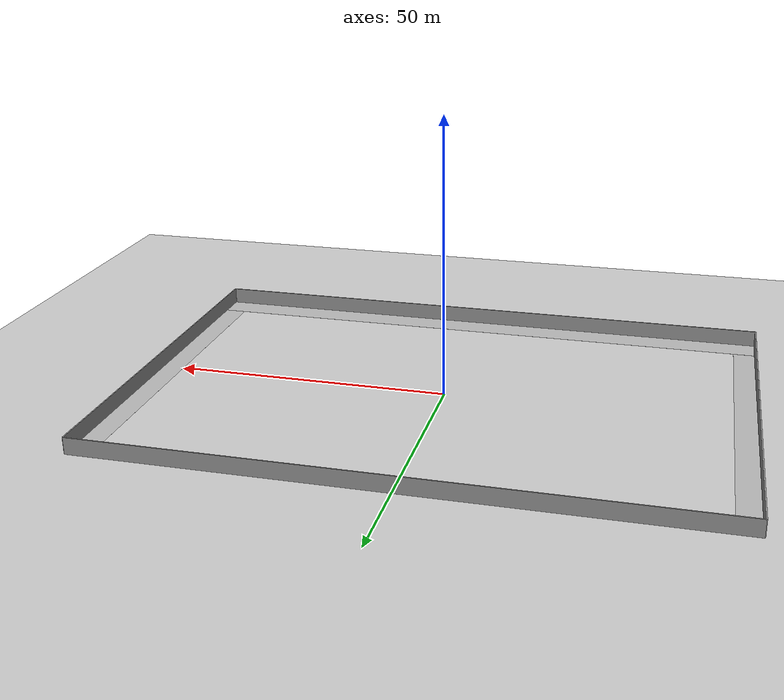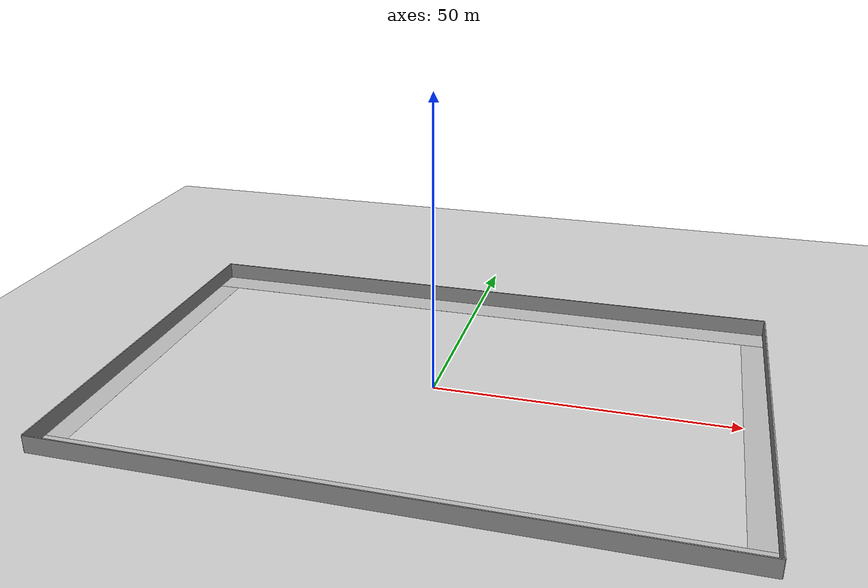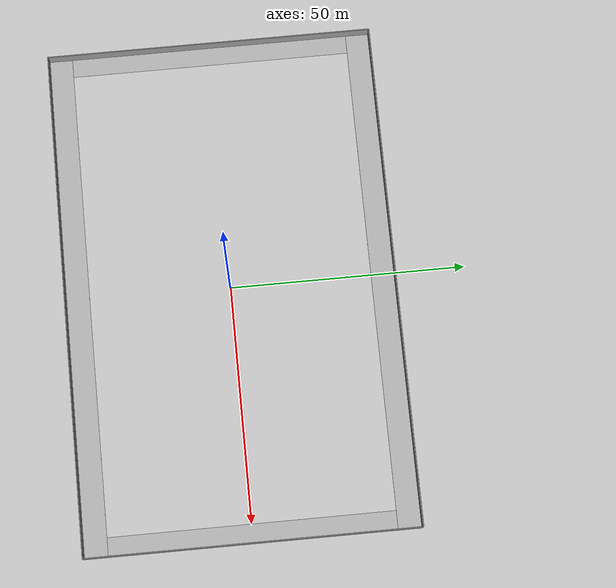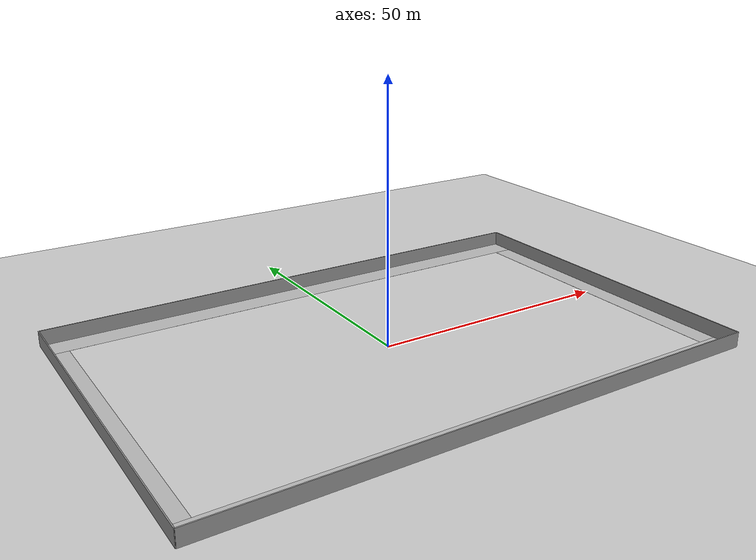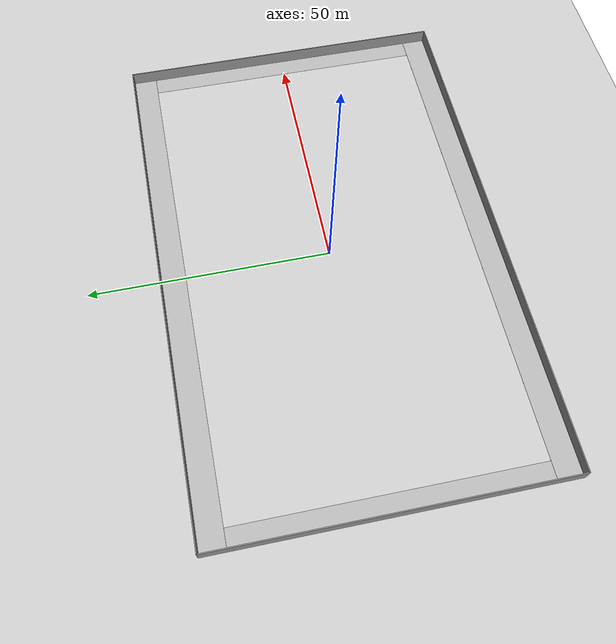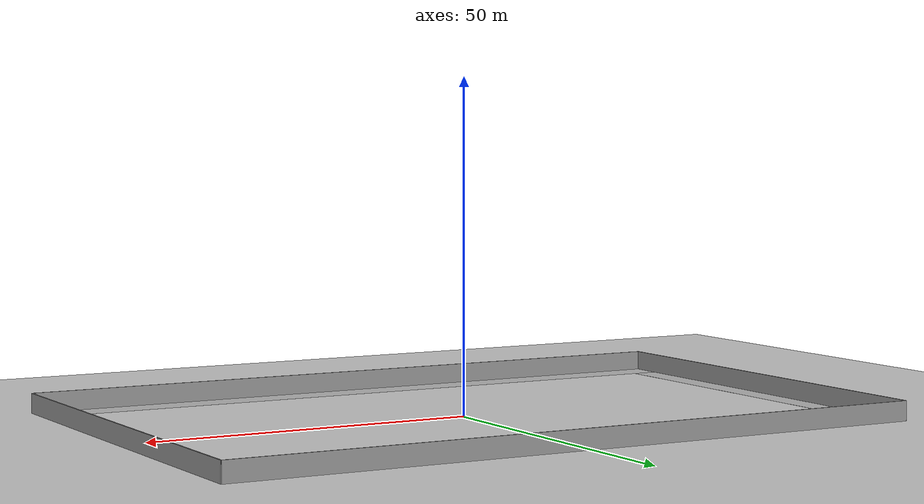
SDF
<?xml version="1.0" ?>
<sdf version="1.4">
  <model name="ugvc_field">
    <static>true</static>

    <link name="field">
      <pose>0 0 0.01 0 0 0</pose>

      <collision name="collision">
        <geometry>
          <plane>
            <normal>0 0 1</normal>
            <size>108 70</size>
          </plane>
        </geometry>
        <surface>
          <friction>
            <ode>
              <mu>100</mu>
              <mu2>50</mu2>
            </ode>
          </friction>
        </surface>
      </collision>

      <visual name="carpet">
        <cast_shadows>false</cast_shadows>
        <geometry>
          <plane>
            <normal>0 0 1</normal>
            <size>100 60</size>
          </plane>
        </geometry>
        <material>
          <script>
            <uri>file://materials/scripts/</uri>
            <uri>file://materials/textures/</uri>
            <name>UGVC/Carpet</name>
          </script>
        </material>
      </visual>

       <visual name="base1">
        <pose>0 32.5 0.01 0 0 0</pose>
        <cast_shadows>false</cast_shadows>
        <geometry>
          <plane>
            <normal>0 0 1</normal>
            <size>108 5</size>
          </plane>
        </geometry>
        <material>
          <script>
            <uri>file://materials/scripts/</uri>
            <uri>file://materials/textures/</uri>
            <name>UGVC/FieldBorder</name>
          </script>
        </material>
      </visual>
      <visual name="base2">
        <pose>0 -32.5 0.01 0 0 0</pose>
        <cast_shadows>false</cast_shadows>
        <geometry>
          <plane>
            <normal>0 0 1</normal>
            <size>108 5</size>
          </plane>
        </geometry>
        <material>
          <script>
            <uri>file://materials/scripts/</uri>
            <uri>file://materials/textures/</uri>
            <name>UGVC/FieldBorder</name>
          </script>
        </material>
      </visual>
      <visual name="base3">
        <pose>52 0 0.01 0 0 0</pose>
        <cast_shadows>false</cast_shadows>
        <geometry>
          <plane>
            <normal>0 0 1</normal>
            <size>4 70</size>
          </plane>
        </geometry>
        <material>
          <script>
            <uri>file://materials/scripts/</uri>
            <uri>file://materials/textures/</uri>
            <name>UGVC/FieldBorder</name>
          </script>
        </material>
      </visual>
      <visual name="base4">
        <pose>-52 0 0.01 0 0 0</pose>
        <cast_shadows>false</cast_shadows>
        <geometry>
          <plane>
            <normal>0 0 1</normal>
            <size>4 70</size>
          </plane>
        </geometry>
        <material>
          <script>
            <uri>file://materials/scripts/</uri>
            <uri>file://materials/textures/</uri>
            <name>UGVC/FieldBorder</name>
          </script>
        </material>
      </visual>

      <visual name='wall_1'>
          <pose>0 35 1.5 0 0 0</pose>
          <cast_shadows>false</cast_shadows>
          <geometry>
            <box>
              <size>108 0.2 3</size>
            </box>
          </geometry>
          <material>
            <script>
              <uri>file://materials/scripts</uri>
              <uri>file://materials/textures</uri>
              <name>UGVC/grey_wall</name>
            </script>
          </material>
        </visual>

        <collision name='wall_1'>
          <pose>0 35 1.5 0 0 0</pose>
          <geometry>
            <box>
              <size>108 0.2 3</size>
            </box>
          </geometry>
          <max_contacts>10</max_contacts>
          <surface>
            <contact>
              <ode/>
            </contact>
            <bounce/>
            <friction>
              <ode/>
            </friction>
          </surface>
        </collision>

        <visual name='wall_2'>
          <pose>0 -35 1.5 0 0 0</pose>
          <cast_shadows>false</cast_shadows>
          <geometry>
            <box>
              <size>108 0.2 3</size>
            </box>
          </geometry>
          <material>
            <script>
              <uri>file://materials/scripts</uri>
              <uri>file://materials/textures</uri>
              <name>UGVC/grey_wall</name>
            </script>
          </material>
        </visual>

        <collision name='wall_2'>
          <pose>0 -35 1.5 0 0 0</pose>
          <geometry>
            <box>
              <size>108 0.2 3</size>
            </box>
          </geometry>
          <max_contacts>10</max_contacts>
          <surface>
            <contact>
              <ode/>
            </contact>
            <bounce/>
            <friction>
              <ode/>
            </friction>
          </surface>
        </collision>

        <visual name='wall_3'>
          <pose>54 0 1.5 0 0 -1.5708</pose>
          <cast_shadows>false</cast_shadows>
          <geometry>
            <box>
              <size>70 0.2 3</size>
            </box>
          </geometry>
          <material>
            <script>
              <uri>file://materials/scripts</uri>
              <uri>file://materials/textures</uri>
              <name>UGVC/grey_wall</name>
            </script>
          </material>
        </visual>

        <collision name='wall_3'>
          <pose>54 0 1.5 0 0 -1.5708</pose>
          <geometry>
            <box>
              <size>70 0.2 3</size>
            </box>
          </geometry>
          <max_contacts>10</max_contacts>
          <surface>
            <contact>
              <ode/>
            </contact>
            <bounce/>
            <friction>
              <ode/>
            </friction>
          </surface>
        </collision>

        <visual name='wall_4'>
          <pose>-54 0 1.5 0 0 1.5708</pose>
          <cast_shadows>false</cast_shadows>
          <geometry>
            <box>
              <size>70 0.2 3</size>
            </box>
          </geometry>
          <material>
            <script>
              <uri>file://materials/scripts</uri>
              <uri>file://materials/textures</uri>
              <name>UGVC/grey_wall</name>
            </script>
          </material>
        </visual>

        <collision name='wall_4'>
          <pose>-54 0 1.5 0 0 1.5708</pose>
          <geometry>
            <box>
              <size>70 0.2 3</size>
            </box>
          </geometry>
          <max_contacts>10</max_contacts>
          <surface>
            <contact>
              <ode/>
            </contact>
            <bounce/>
            <friction>
              <ode/>
            </friction>
          </surface>
        </collision>

    </link>

  </model>
</sdf>
